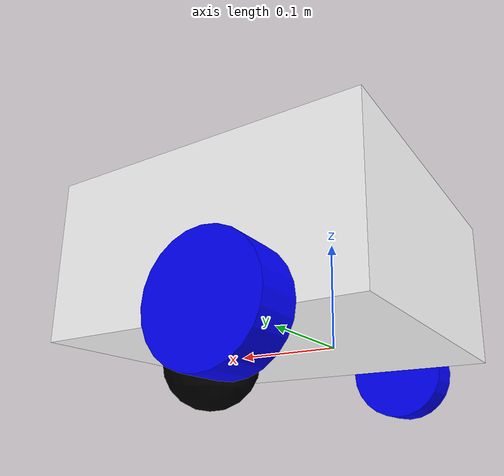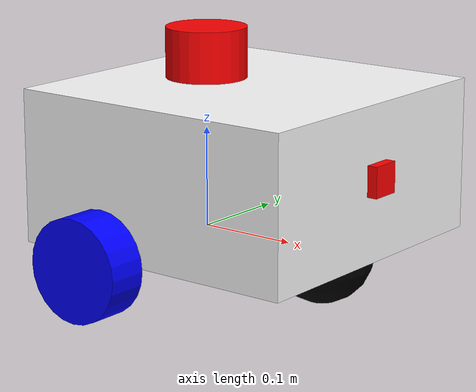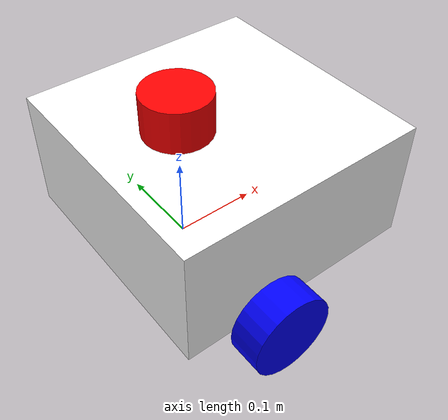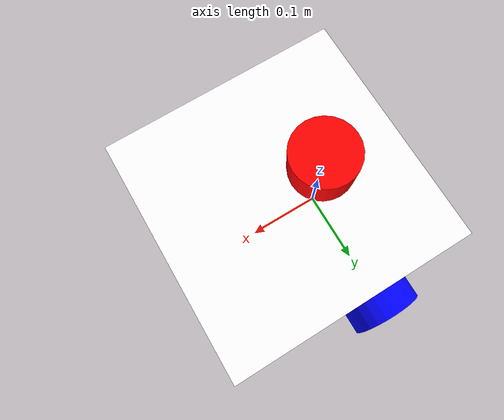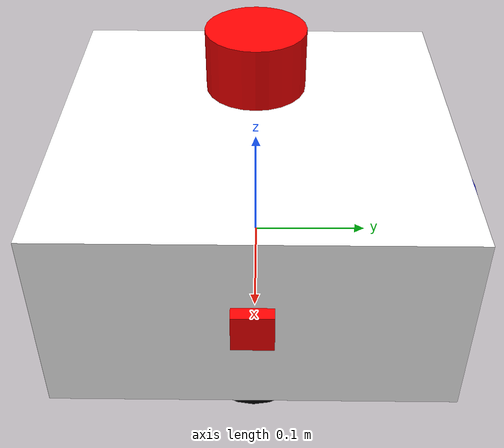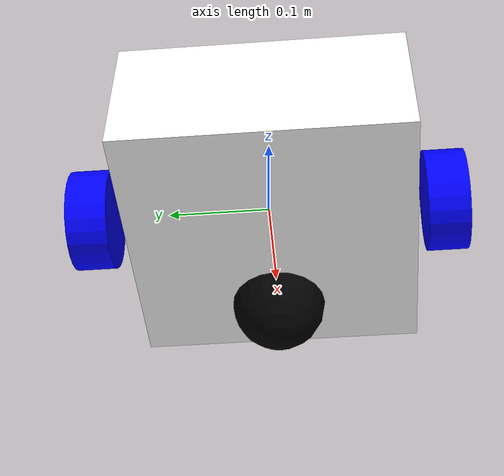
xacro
<?xml version="1.0"?>
<robot xmlns:xacro="http://www.ros.org/wiki/xacro"  name="robot">

	<xacro:include filename="robot_core.xacro" />
	<xacro:include filename="ros2_control.xacro" />
	<xacro:include filename="lidar.xacro" />
	<xacro:include filename="camera.xacro" />

</robot>

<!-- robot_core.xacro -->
<robot xmlns:xacro="http://www.ros.org/wiki/xacro" xmlns:ode="http://www.ros.org/wiki/xacro">

    <material name = "white">
        <color rgba="1 1 1 1"/>
    </material>

    <material name = "orange">
        <color rgba="1 0.647 0 1"/>
    </material>

    <material name = "blue">
        <color rgba="0 0 1 1"/>
    </material>

    <material name = "black">
        <color rgba="0 0 0 1"/>
    </material>

    <material name = "red">
        <color rgba="1 0 0 1"/>
    </material>

    <link name="base_link">

    </link>

    <joint name="base_footprint_joint" type="fixed">
        <parent link="base_link"/>
        <child link="base_footprint"/>
        <origin xyz="0 0 0" rpy="0 0 0"/>
    </joint>

    <link name="base_footprint">
    </link>

    <joint name="chasis_joint" type="fixed">
        <parent link="base_link"/>
        <child link="chassis"/>
        <origin xyz="-0.1 0 0" />
    </joint>

    <link name="chassis">
        <visual>
            <origin xyz="0.15 0 0.075" rpy="0 0 0"/>
            <geometry>
                <box size="0.3 0.3 0.15"/>
            </geometry>
            <material name="white"/>
        </visual>
        <collision>
            <origin xyz="0.15 0 0.075" rpy="0 0 0"/>
            <geometry>
                <box size="0.3 0.3 0.15"/>
            </geometry>
        </collision>
        <inertial>
            <mass value="0.5"/>
            <origin xyz="0.15 0 0.075" rpy="0 0 0"/>
            <inertia ixx="0.01" ixy="0.0" ixz="0.0" iyy="0.01" iyz="0.0" izz="0.01"/>
        </inertial>
    </link>

    <gazebo reference="chassis">
        <material>Gazebo/White</material>
    </gazebo>

    <joint name="left_wheel_joint" type="continuous">
        <parent link="base_link"/>
        <child link="left_wheel"/>
        <origin xyz="0 0.175 0" rpy="-${pi/2} 0 0"/>
        <axis xyz="0 0 1"/>
    </joint>

    <gazebo reference="left_wheel_joint">
        <joint_properties>
            <ode:ode>
                <fudge_factor>0.1</fudge_factor>
            </ode:ode>
        </joint_properties>
    </gazebo>

    <transmission name="left_wheel_joint_trans">
        <type>transmission_interface/SimpleTransmission</type>
        <joint name="left_wheel_joint">
            <hardwareInterface>hardware_interface/VelocityJointInterface</hardwareInterface>
        </joint>
        <actuator name="left_wheel_motor">
            <hardwareInterface>hardware_interface/VelocityJointInterface</hardwareInterface>
            <mechanicalReduction>1</mechanicalReduction>
        </actuator>
    </transmission>

    <link name="left_wheel">
        <visual>
            <origin xyz="0 0 0" rpy="0 0 0"/>
            <geometry>
                <cylinder length="0.04" radius="0.05"/>
            </geometry>
            <material name="blue"/>
        </visual>
        <collision>
            <origin xyz="0 0 0" rpy="0 0 0"/>
            <geometry>
                <cylinder length="0.04" radius="0.05"/>
            </geometry>
        </collision>
        <inertial>
            <mass value="0.1"/>
            <origin xyz="0 0 0" rpy="0 0 0"/>
            <inertia ixx="0.001" ixy="0.0" ixz="0.0" iyy="0.001" iyz="0.0" izz="0.001"/>
        </inertial>
    </link>

    <gazebo reference="left_wheel">
        <material>Gazebo/Blue</material>
    </gazebo>

    <joint name="right_wheel_joint" type="continuous">
        <parent link="base_link"/>
        <child link="right_wheel"/>
        <origin xyz="0 -0.175 0" rpy="${pi/2} 0 0"/>
        <axis xyz="0 0 -1"/>
    </joint>

    <gazebo reference="right_wheel_joint">
        <joint_properties>
            <ode:ode>
                <fudge_factor>0.1</fudge_factor>
            </ode:ode>
        </joint_properties>
    </gazebo>

    <transmission name="right_wheel_joint_trans">
        <type>transmission_interface/SimpleTransmission</type>
        <joint name="right_wheel_joint">
            <hardwareInterface>hardware_interface/VelocityJointInterface</hardwareInterface>
        </joint>
        <actuator name="right_wheel_motor">
            <hardwareInterface>hardware_interface/VelocityJointInterface</hardwareInterface>
            <mechanicalReduction>1</mechanicalReduction>
        </actuator>
    </transmission>

    <link name="right_wheel">
        <visual>
            <origin xyz="0 0 0" rpy="0 0 0"/>
            <geometry>
                <cylinder length="0.04" radius="0.05"/>
            </geometry>
            <material name="blue"/>
        </visual>
        <collision>
            <origin xyz="0 0 0" rpy="0 0 0"/>
            <geometry>
                <cylinder length="0.04" radius="0.05"/>
            </geometry>
        </collision>
        <inertial>
            <mass value="0.1"/>
            <origin xyz="0 0 0" rpy="0 0 0"/>
            <inertia ixx="0.001" ixy="0.0" ixz="0.0" iyy="0.001" iyz="0.0" izz="0.001"/>
        </inertial>
    </link>

    <gazebo reference="right_wheel">
        <material>Gazebo/Blue</material>
    </gazebo>

    <joint name="caster_wheel_joint" type="fixed">
        <parent link="chassis"/>
        <child link="caster_wheel"/>
        <origin xyz="0.24 0 0"/>
    </joint>

    <link name="caster_wheel">
        <visual>
            <geometry>
                <sphere radius="0.05"/>
            </geometry>
            <material name="black"/>
        </visual>
        <collision>
            <geometry>
                <sphere radius="0.05"/>
            </geometry>
        </collision>
        <inertial>
            <mass value="0.1"/>
            <origin xyz="0 0 0" rpy="0 0 0"/>
            <inertia ixx="0.0005" ixy="0.0" ixz="0.0" iyy="0.0005" iyz="0.0" izz="0.0005"/>
        </inertial>
    </link>

    <gazebo reference="caster_wheel">
        <material>Gazebo/Black</material>
        <mu1 value="0.001"/>
        <mu2 value="0.001"/>
    </gazebo>

</robot>

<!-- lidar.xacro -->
<robot xmlns:xacro="http://www.ros.org/wiki/xacro"  name="robot">

    <joint name="lidar_joint" type="fixed">
        <parent link="chassis"/>
        <child link="lidar_link"/>
        <origin xyz="0.1 0 0.175" rpy="0 0 0"/>
    </joint>

    <link name="lidar_link">
        <visual>
            <geometry>
                <cylinder length="0.05" radius="0.04"/>
            </geometry>
            <material name="red"/>
        </visual>
        <collision>
            <origin xyz="0 0 0" rpy="0 0 0"/>
            <geometry>
                <cylinder length="0.05" radius="0.04"/>
            </geometry>
        </collision>
        <inertial>
            <mass value="0.1"/>
            <origin xyz="0 0 0" rpy="0 0 0"/>
            <inertia ixx="0.001" ixy="0.0" ixz="0.0" iyy="0.001" iyz="0.0" izz="0.001"/>
        </inertial>
    </link>

    <gazebo reference="lidar_link">
        <material>Gazebo/Red</material>
        <sensor name="lidar_sensor" type="ray">
            <pose>0 0 0 0 0 0</pose>
            <visualize>false</visualize>
            <update_rate>10.0</update_rate>
            <ray>
                <scan>
                    <horizontal>
                        <samples>360</samples>
                        <resolution>1</resolution>
                        <min_angle>-3.14159</min_angle>
                        <max_angle>3.14159</max_angle>
                    </horizontal>
                </scan>
                <range>
                    <min>0.3</min>
                    <max>12</max>
                    <resolution>0.01</resolution>
                </range>
                <noise type="gaussian">
                    <mean>0.0</mean>
                    <stddev>0.01</stddev>
                </noise>
            </ray>
            <plugin name="gazebo_ros_laser_controller" filename="libgazebo_ros_ray_sensor.so">
                <ros>
                    <argument>~/out:=scan</argument>
                </ros>
                <output_type>sensor_msgs/LaserScan</output_type>
                <frameName>lidar_link</frameName>
            </plugin>
        </sensor>
    </gazebo>

</robot>

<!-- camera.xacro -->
<robot xmlns:xacro="http://www.ros.org/wiki/xacro"  name="robot">

    <joint name="camera_joint" type="fixed">
        <parent link="chassis"/>
        <child link="camera_link"/>
        <origin xyz="0.305 0 0.08" rpy="0 0 0"/>
    </joint>

    <link name="camera_link">
        <visual>
            <geometry>
                <box size="0.010 0.03 0.03"/>
            </geometry>
            <material name="red"/>
        </visual>
    </link>

    <joint name="camera_optical_joint" type="fixed">
        <parent link="camera_link"/>
        <child link="camera_optical_link"/>
        <origin xyz="0 0 0" rpy="${-pi/2} 0 ${-pi/2}"/>
    </joint>

    <link name="camera_optical_link">
    </link>

    <gazebo reference="camera_link">
        <material>Gazebo/Red</material>
        <sensor name="camera_sensor" type="camera">
            <pose>0 0 0 0 0 0</pose>
            <visualize>true</visualize>
            <update_rate>10.0</update_rate>
            <camera>
                <horizontal_fov>1.089</horizontal_fov>
                <image>
                    <width>640</width>
                    <height>480</height>
                    <format>R8G8B8</format>
                </image>
                <clip>
                    <near>0.05</near>
                    <far>8</far>
                </clip>
            </camera>
            <plugin name="gazebo_ros_camera_controller" filename="libgazebo_ros_camera.so">
                <frameName>camera_optical_link</frameName>
            </plugin>
        </sensor>
    </gazebo>

</robot>
